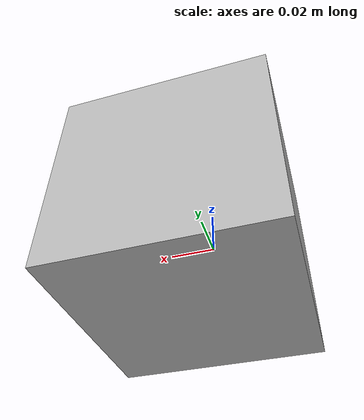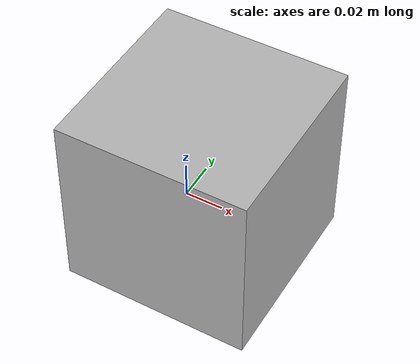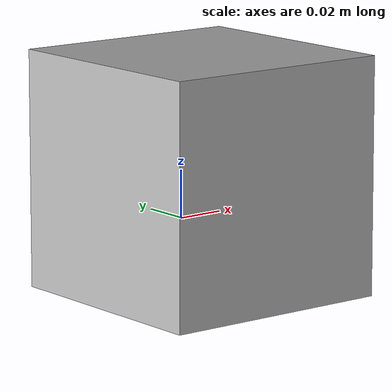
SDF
<?xml version='1.0'?>
<sdf version="1.4">
  <model name="camera">
    <static>true</static>
      <pose>0.01 0 0.0175 0 -0 0</pose>
      <link name='link'>
        <visual name='visual'>
          <geometry>
            <box>
              <size>0.1 0.1 0.1</size>
            </box>
          </geometry>
        </visual>
        <sensor name='my_camera' type='camera'>
          <camera>
            <save enabled="true">
              <path>/tmp/camera_save_tutorial</path>
            </save>
            <horizontal_fov>1.047</horizontal_fov>
            <image>
              <width>1920</width>
              <height>1080</height>
            </image>
            <clip>
              <near>0.1</near>
              <far>100</far>
            </clip>
          </camera>
          <always_on>1</always_on>
          <update_rate>30</update_rate>
        </sensor>

        <plugin name="camera_controller" filename="libgazebo_ros_camera.so">
		      <alwaysOn>true</alwaysOn>
		      <updateRate>0.0</updateRate>
		      <cameraName>/mybot/camera</cameraName>
		      <imageTopicName>image_raw</imageTopicName>
		      <cameraInfoTopicName>camera_info</cameraInfoTopicName>
		      <frameName>camera</frameName>
		      <hackBaseline>0.07</hackBaseline>
		      <distortionK1>0.0</distortionK1>
		      <distortionK2>0.0</distortionK2>
		      <distortionK3>0.0</distortionK3>
		      <distortionT1>0.0</distortionT1>
		      <distortionT2>0.0</distortionT2>
		    </plugin>

      </link>
  </model>
</sdf>
